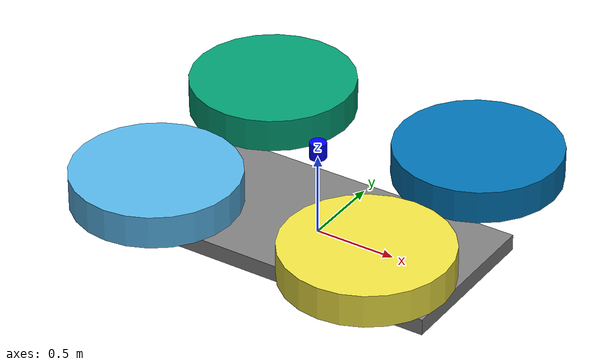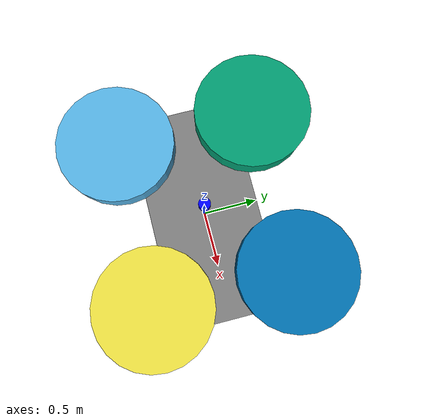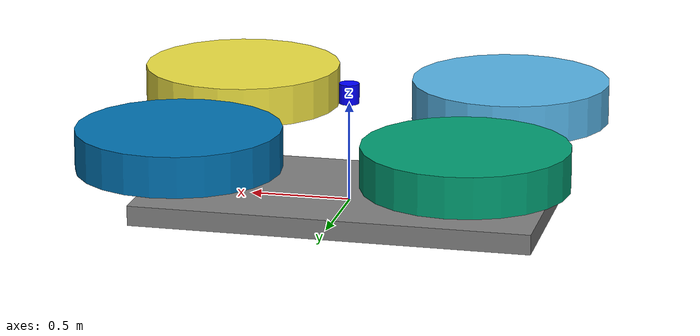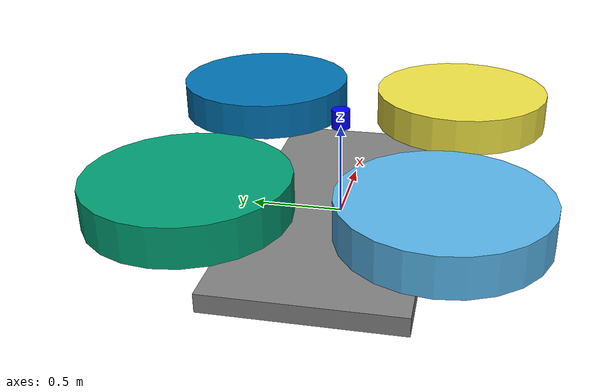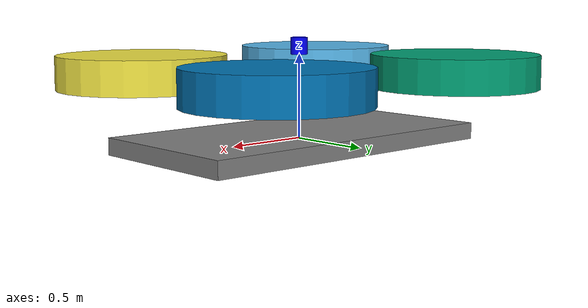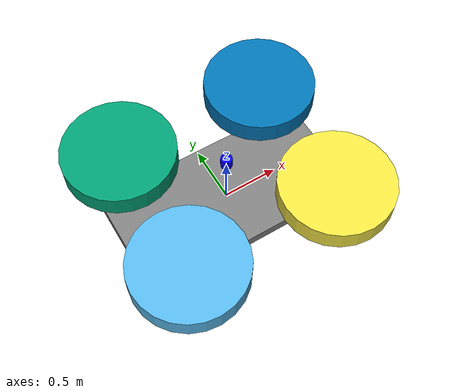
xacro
<?xml version="1.0"?>
<robot name="my_robot" xmlns:xacro="http://ros.org/wiki/xacro">

  <!-- Define materials -->
  <material name="gray">
    <color rgba="0.5 0.5 0.5 1.0"/> <!-- Gray color -->
  </material>

  <material name="blue">
    <color rgba="0.0 0.0 1.0 1.0"/> <!-- Blue color -->
  </material>

  <!-- Robot dimensions and properties -->
  <xacro:property name="wheel_radius" value="0.5"/> <!-- Half of diameter 1 -->
  <xacro:property name="wheel_separation" value="1.2"/> <!-- Distance between wheels on opposite sides of base -->
  <xacro:property name="robot_length" value="2.0"/> <!-- Robot length -->
  <xacro:property name="robot_width" value="1.0"/> <!-- Robot width -->
  <xacro:property name="base_height" value="0.1"/> <!-- Thickness of the base link -->

  <!-- Base link -->
  <link name="base_link">
    <inertial>
      <mass value="5.0"/>
      <inertia ixx="1.0" ixy="0.0" ixz="0.0" iyy="1.0" iyz="0.0" izz="1.0"/>
    </inertial>
    <visual>
      <geometry>
        <box size="${robot_length} ${robot_width} ${base_height}"/>
      </geometry>
      <material name="gray"/>
    </visual>
    <collision>
      <geometry>
        <box size="${robot_length} ${robot_width} ${base_height}"/>
      </geometry>
    </collision>
  </link>

  <!-- Rear Wheels (left and right) - Motor wheels -->
  <link name="rear_left_wheel">
    <inertial>
      <mass value="1.0"/>
      <inertia ixx="0.1" ixy="0.0" ixz="0.0" iyy="0.1" iyz="0.0" izz="0.1"/>
    </inertial>
    <visual>
      <geometry>
        <cylinder length="0.2" radius="${wheel_radius}"/>
      </geometry>
    </visual>
    <collision>
      <geometry>
        <cylinder length="0.2" radius="${wheel_radius}"/>
      </geometry>
    </collision>
  </link>
  <joint name="rear_left_wheel_joint" type="continuous">
    <parent link="base_link"/>
    <child link="rear_left_wheel"/>
    <origin xyz="-0.7 ${-wheel_separation / 2} 0.4" rpy="0 0 0"/> <!-- Positioned on the side and slightly below base -->
    <axis xyz="0 0 1"/>
  </joint>

  <link name="rear_right_wheel">
    <inertial>
      <mass value="1.0"/>
      <inertia ixx="0.1" ixy="0.0" ixz="0.0" iyy="0.1" iyz="0.0" izz="0.1"/>
    </inertial>
    <visual>
      <geometry>
        <cylinder length="0.2" radius="${wheel_radius}"/>
      </geometry>
    </visual>
    <collision>
      <geometry>
        <cylinder length="0.2" radius="${wheel_radius}"/>
      </geometry>
    </collision>
  </link>
  <joint name="rear_right_wheel_joint" type="continuous">
    <parent link="base_link"/>
    <child link="rear_right_wheel"/>
    <origin xyz="-0.7 ${wheel_separation / 2} 0.4" rpy="0 0 0"/>
    <axis xyz="0 0 1"/>
  </joint>

  <!-- Front Wheels (left and right) - Omniwheels -->
  <link name="front_left_omniwheel">
    <inertial>
      <mass value="0.5"/>
      <inertia ixx="0.05" ixy="0.0" ixz="0.0" iyy="0.05" iyz="0.0" izz="0.05"/>
    </inertial>
    <visual>
      <geometry>
        <cylinder length="0.2" radius="${wheel_radius}"/>
      </geometry>
    </visual>
    <collision>
      <geometry>
        <cylinder length="0.2" radius="${wheel_radius}"/>
      </geometry>
    </collision>
  </link>
  <joint name="front_left_omniwheel_joint" type="continuous">
    <parent link="base_link"/>
    <child link="front_left_omniwheel"/>
    <origin xyz="0.7 ${-wheel_separation / 2} 0.4" rpy="0 0 0"/>
    <axis xyz="0 0 1"/>
  </joint>

  <link name="front_right_omniwheel">
    <inertial>
      <mass value="0.5"/>
      <inertia ixx="0.05" ixy="0.0" ixz="0.0" iyy="0.05" iyz="0.0" izz="0.05"/>
    </inertial>
    <visual>
      <geometry>
        <cylinder length="0.2" radius="${wheel_radius}"/>
      </geometry>
    </visual>
    <collision>
      <geometry>
        <cylinder length="0.2" radius="${wheel_radius}"/>
      </geometry>
    </collision>
  </link>
  <joint name="front_right_omniwheel_joint" type="continuous">
    <parent link="base_link"/>
    <child link="front_right_omniwheel"/>
    <origin xyz="0.7 ${wheel_separation / 2} 0.4" rpy="0 0 0"/>
    <axis xyz="0 0 1"/>
  </joint>

  <!-- Laser (centered on top of base_link) -->
  <link name="laser">
    <inertial>
      <mass value="0.2"/>
      <inertia ixx="0.02" ixy="0.0" ixz="0.0" iyy="0.02" iyz="0.0" izz="0.02"/>
    </inertial>
    <visual>
      <geometry>
        <cylinder length="0.1" radius="0.05"/>
      </geometry>
      <material name="blue"/>
    </visual>
    <collision>
      <geometry>
        <cylinder length="0.1" radius="0.05"/>
      </geometry>
    </collision>
  </link>
  <joint name="laser_joint" type="fixed">
    <parent link="base_link"/>
    <child link="laser"/>
    <origin xyz="0 0 0.55" rpy="0 0 0"/> <!-- Positioned on top of base_link -->
  </joint>

</robot>
